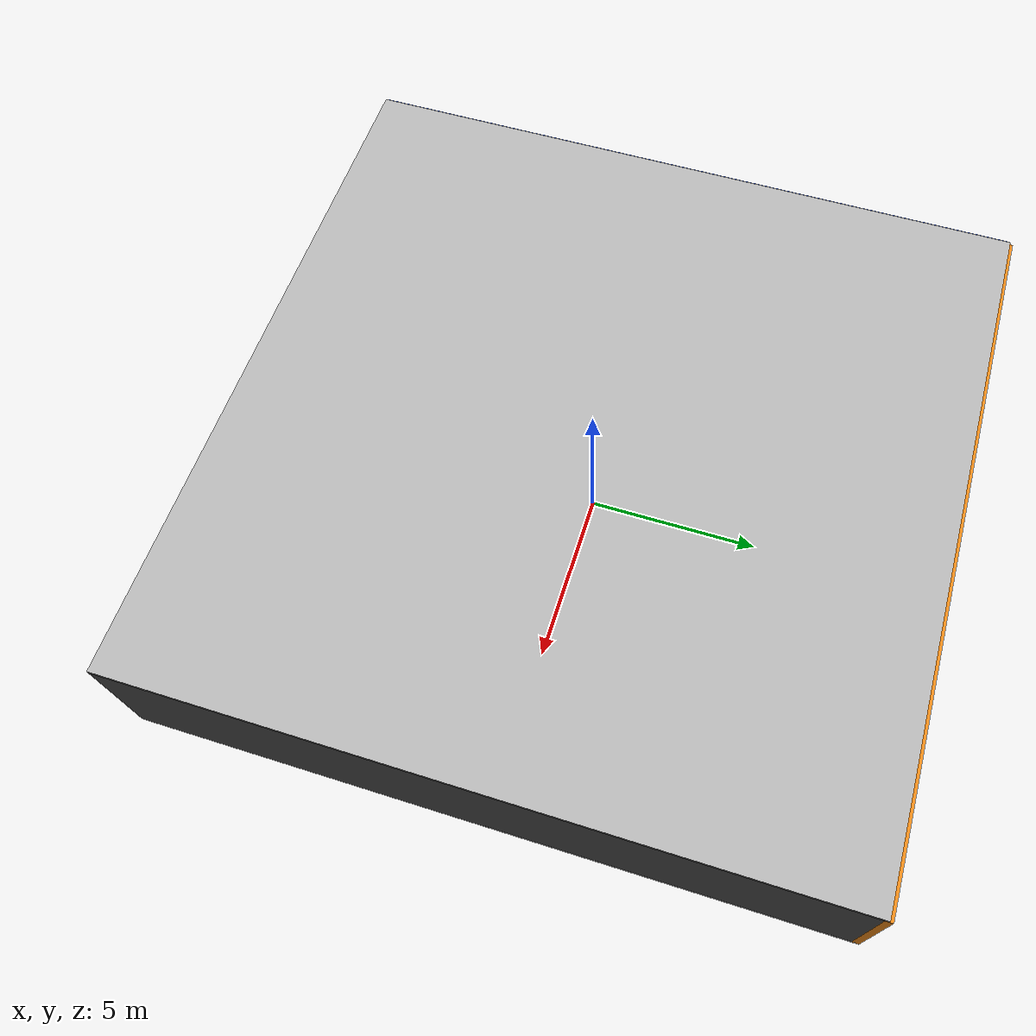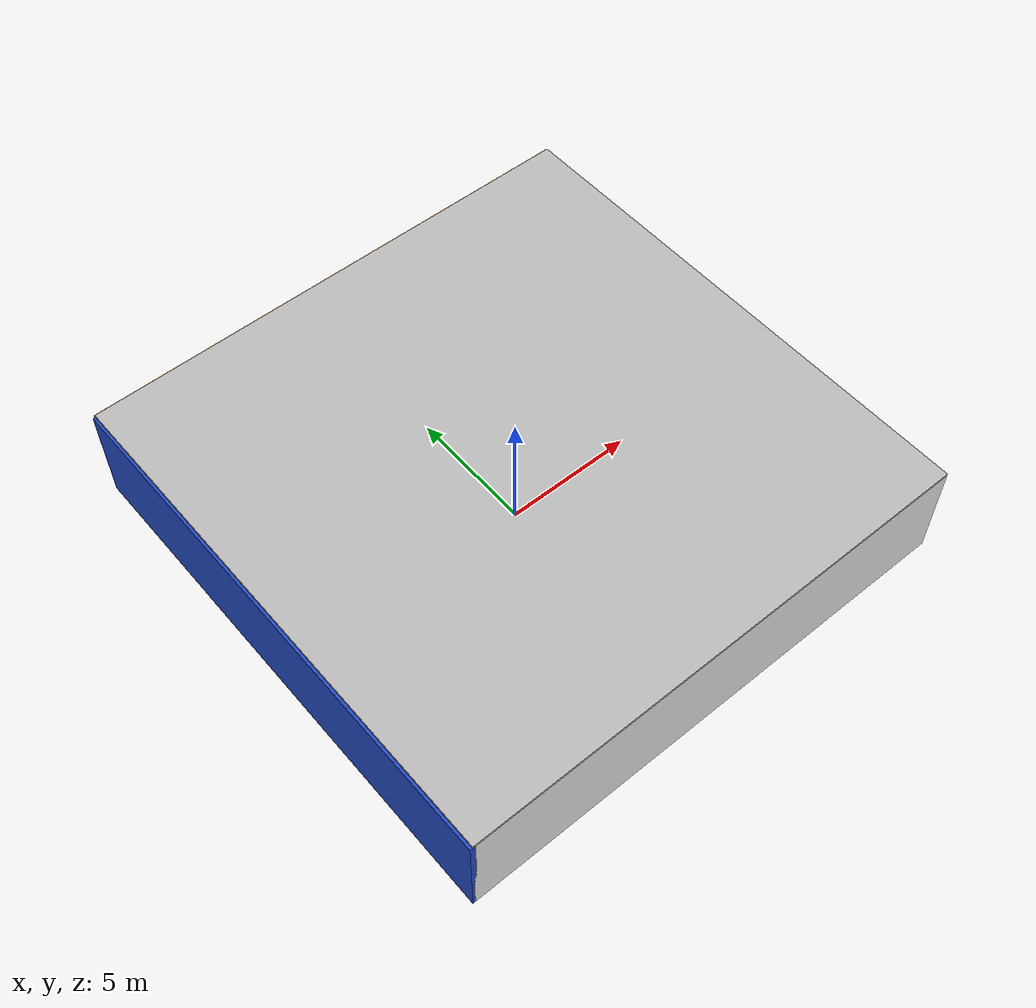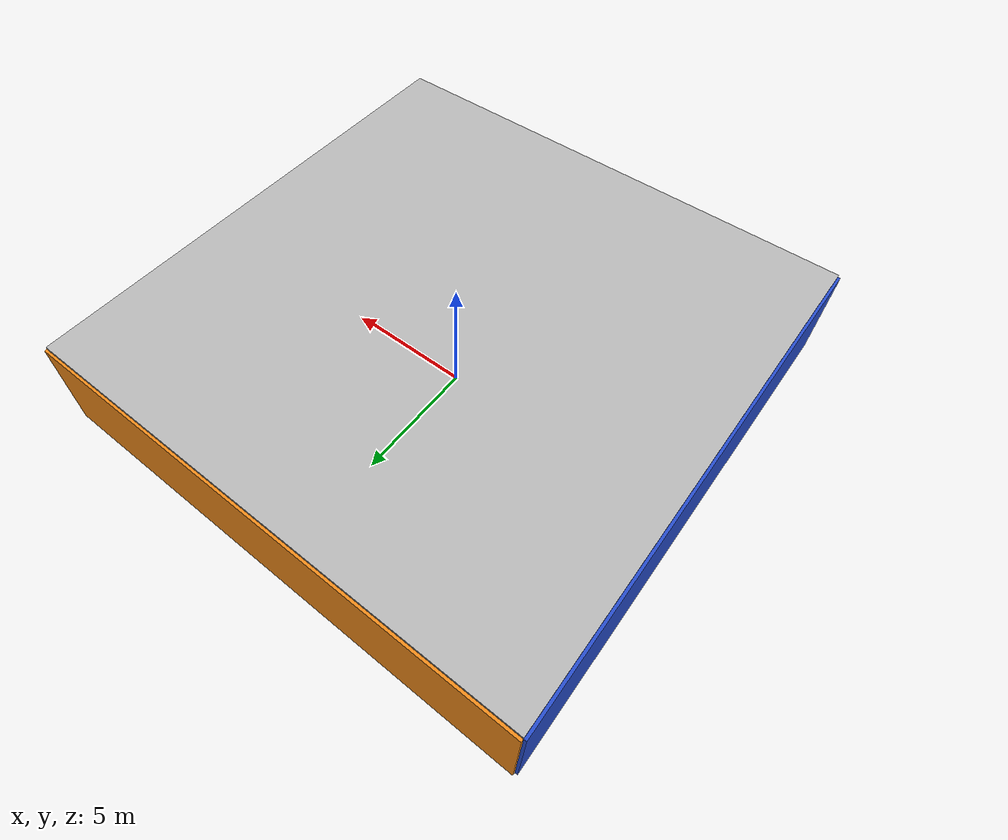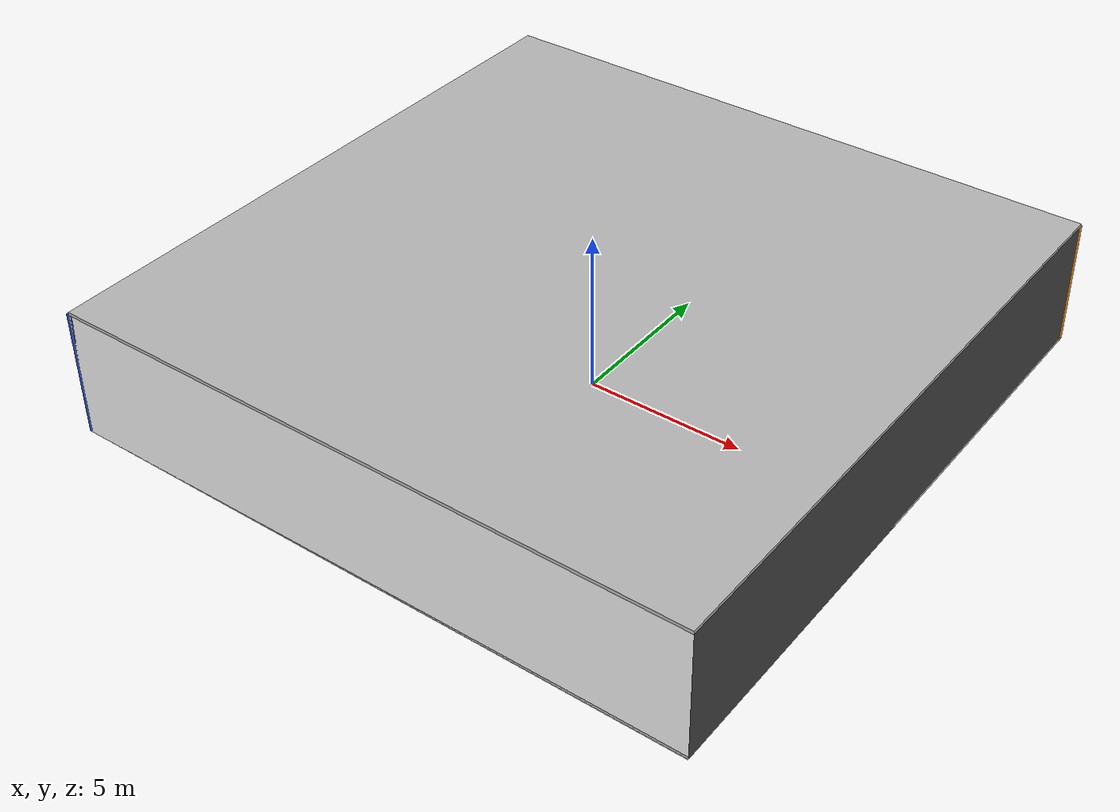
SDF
<sdf version="1.4">
 <world name="default">
  <physics type="ode">
   <max_step_size>0.001</max_step_size>
   <real_time_factor>1</real_time_factor>
   <real_time_update_rate>1000</real_time_update_rate>
   <gravity>0 0 -9.8</gravity>
  </physics>
  <scene><ambient>0.4 0.4 0.4 1</ambient><background>0.7 0.7 0.7 1</background><shadows>1</shadows></scene>
  <model name="Surrounding">
   <static>1</static>
   <link name="Ceiling">
    <collision name="Ceiling_Collision"><geometry><box><size>20 20 0.1</size></box></geometry></collision>
    <visual name="Ceiling_Visual">
     <geometry><box><size>20 20 0.1</size></box></geometry>
     <material>
      <script><uri>file://media/materials/scripts/gazebo.material</uri><name>Gazebo/LightOn</name></script>
     </material>
    </visual>
    <pose>0 0 4.05 0 0 0</pose>
   </link>
   <link name="Wall_South">
    <collision name="Wall_South_Collision">
     <geometry><box><size>20 0 4</size></box></geometry>
     <pose>0 0 2 0 -0 0</pose>
    </collision>
    <visual name="Wall_South_Visual">
     <pose>0 0 2 0 -0 0</pose>
     <geometry><box><size>20 0 4</size></box></geometry>
     <material>
      <script><uri>file://media/materials/scripts/gazebo.material</uri><name>Gazebo/WhiteGlow</name></script>
     </material>
    </visual>
    <velocity_decay><linear>0</linear><angular>0</angular></velocity_decay>
    <pose>0 -10 0 0 -0 0</pose>
   </link>
   <link name="Wall_East">
    <collision name="Wall_21_Collision">
     <geometry><box><size>20 0 4</size></box></geometry>
     <pose>0 0 2 0 -0 0</pose>
    </collision>
    <visual name="Wall_21_Visual">
     <pose>0 0 2 0 -0 0</pose>
     <geometry><box><size>20 0 4</size></box></geometry>
     <material>
      <script><uri>file://media/materials/scripts/gazebo.material</uri><name>Gazebo/Road</name></script>
     </material>
    </visual>
    <velocity_decay><linear>0</linear><angular>0</angular></velocity_decay>
    <pose>10 0 0 0 -0 1.5708</pose>
   </link>
   <link name="Wall_North">
    <collision name="Wall_22_Collision">
     <geometry><box><size>20 0.2 4</size></box></geometry>
     <pose>0 0 2 0 -0 0</pose>
    </collision>
    <visual name="Wall_22_Visual">
     <pose>0 0 2 0 -0 0</pose>
     <geometry><box><size>20 0.2 4</size></box></geometry>
     <material>
      <script><uri>file://media/materials/scripts/gazebo.material</uri><name>Gazebo/Orange</name></script>
     </material>
    </visual>
    <velocity_decay><linear>0</linear><angular>0</angular></velocity_decay>
    <pose>0 10 0 0 -0 0</pose>
   </link>
   <link name="Wall_West">
    <collision name="Wall_23_Collision">
     <geometry><box><size>20 0.2 4</size></box></geometry>
     <pose>0 0 2 0 -0 0</pose>
    </collision>
    <visual name="Wall_23_Visual">
     <pose>0 0 2 0 -0 0</pose>
     <geometry><box><size>20 0.2 4</size></box></geometry>
     <material>
      <script><uri>file://media/materials/scripts/gazebo.material</uri><name>Gazebo/BlueGlow</name></script>
     </material>
    </visual>
    <velocity_decay><linear>0</linear><angular>0</angular></velocity_decay>
    <pose>-10 0 0 0 0 -1.5708</pose>
   </link>
   <link name="Ground_link">
    <collision name="collision">
     <pose>0 0 .05 0 -0 0</pose>
     <geometry><box><size>20 20 0.1</size></box></geometry>
    </collision>
    <visual name="visual">
     <pose>0 0 .05 0 -0 0</pose>
     <geometry><box><size>20 20 0.1</size></box></geometry>
     <material>
      <script><uri>file://media/materials/scripts/gazebo.material</uri><name>Gazebo/LightOn</name></script>
     </material>
    </visual>
   </link>
   <static>1</static>
  </model>
  <spherical_coordinates>
   <surface_model>EARTH_WGS84</surface_model>
   <latitude_deg>0</latitude_deg>
   <longitude_deg>0</longitude_deg>
   <elevation>0</elevation>
   <heading_deg>0</heading_deg>
  </spherical_coordinates>
  <light name="lightball_0" type="diffuse">
   <diffuse>0.8 0.8 0.8 1</diffuse>
   <specular>0.2 0.2 0.2 1</specular>
   <attenuation>
    <range>100</range>
    <constant>0.7</constant>
    <linear>0.01</linear>
    <quadratic>0.001</quadratic>
   </attenuation>
   <direction>-0.5 0.1 -0.9</direction>
   <pose>-5.66331031944 4.60419855997 2.58885689446 0 0 0</pose>
  </light>
  <light name="lightball_1" type="diffuse">
   <diffuse>0.8 0.8 0.8 1</diffuse>
   <specular>0.2 0.2 0.2 1</specular>
   <attenuation>
    <range>100</range>
    <constant>0.7</constant>
    <linear>0.01</linear>
    <quadratic>0.001</quadratic>
   </attenuation>
   <direction>-0.5 0.1 -0.9</direction>
   <pose>2.94650705979 -7.30404110618 3.18827331607 0 0 0</pose>
  </light>
  <light name="lightball_2" type="diffuse">
   <diffuse>0.8 0.8 0.8 1</diffuse>
   <specular>0.2 0.2 0.2 1</specular>
   <attenuation>
    <range>100</range>
    <constant>0.7</constant>
    <linear>0.01</linear>
    <quadratic>0.001</quadratic>
   </attenuation>
   <direction>-0.5 0.1 -0.9</direction>
   <pose>2.26407801572 -5.60574262379 2.99307680558 0 0 0</pose>
  </light>
  <include><uri>model://table</uri><pose>-6.70370552799 1.58731516348 0 0 0 2.51150168934</pose></include>
  <include><uri>model://cabinet</uri><pose>-4.43232345216 -1.58065737893 0 0 0 1.22302192497</pose></include>
  <include>
   <uri>model://robocup_3Dsim_goal</uri>
   <pose>-2.28343029711 -7.68813311804 0 0 0 0.82399499859</pose>
  </include>
  <include>
   <uri>model://construction_cone</uri>
   <pose>1.80431827409 -3.77969062765 0 0 0 0.71615017548</pose>
  </include>
  <include>
   <uri>model://robocup_3Dsim_goal</uri>
   <pose>1.26904329004 4.5271988201 0 0 0 0.621929502873</pose>
  </include>
  <include><uri>model://cabinet</uri><pose>6.99989533313 -4.26803047042 0 0 0 1.60446243194</pose></include>
 </world>
</sdf>

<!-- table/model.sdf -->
<sdf version="1.5">
  <model name="table">
    <static>true</static>
    <link name="link">
      <collision name="surface">
        <pose>0 0 1.0 0 0 0</pose>
        <geometry>
          <box>
            <size>1.5 0.8 0.03</size>
          </box>
        </geometry>
        <surface>
          <friction>
            <ode>
              <mu>0.6</mu>
              <mu2>0.6</mu2>
            </ode>
          </friction>
        </surface>
      </collision>
      <visual name="visual1">
        <pose>0 0 1.0 0 0 0</pose>
        <geometry>
          <box>
            <size>1.5 0.8 0.03</size>
          </box>
        </geometry>
        <material>
          <script>
            <uri>model://media/materials/scripts/gazebo.material</uri>
            <name>Gazebo/Wood</name>
          </script>
        </material>
      </visual>
      <collision name="front_left_leg">
        <pose>0.68 0.38 0.5 0 0 0</pose>
        <geometry>
          <cylinder>
            <radius>0.02</radius>
            <length>1.0</length>
          </cylinder>
        </geometry>
      </collision>
      <visual name="front_left_leg">
        <pose>0.68 0.38 0.5 0 0 0</pose>
        <geometry>
          <cylinder>
            <radius>0.02</radius>
            <length>1.0</length>
          </cylinder>
        </geometry>
        <material>
          <script>
            <uri>model://media/materials/scripts/gazebo.material</uri>
            <name>Gazebo/Grey</name>
          </script>
        </material>
      </visual>
      <collision name="front_right_leg">
        <pose>0.68 -0.38 0.5 0 0 0</pose>
        <geometry>
          <cylinder>
            <radius>0.02</radius>
            <length>1.0</length>
          </cylinder>
        </geometry>
      </collision>
      <visual name="front_right_leg">
        <pose>0.68 -0.38 0.5 0 0 0</pose>
        <geometry>
          <cylinder>
            <radius>0.02</radius>
            <length>1.0</length>
          </cylinder>
        </geometry>
        <material>
          <script>
            <uri>model://media/materials/scripts/gazebo.material</uri>
            <name>Gazebo/Grey</name>
          </script>
        </material>
      </visual>
      <collision name="back_right_leg">
        <pose>-0.68 -0.38 0.5 0 0 0</pose>
        <geometry>
          <cylinder>
            <radius>0.02</radius>
            <length>1.0</length>
          </cylinder>
        </geometry>
      </collision>
      <visual name="back_right_leg">
        <pose>-0.68 -0.38 0.5 0 0 0</pose>
        <geometry>
          <cylinder>
            <radius>0.02</radius>
            <length>1.0</length>
          </cylinder>
        </geometry>
        <material>
          <script>
            <uri>model://media/materials/scripts/gazebo.material</uri>
            <name>Gazebo/Grey</name>
          </script>
        </material>
      </visual>
      <collision name="back_left_leg">
        <pose>-0.68 0.38 0.5 0 0 0</pose>
        <geometry>
          <cylinder>
            <radius>0.02</radius>
            <length>1.0</length>
          </cylinder>
        </geometry>
      </collision>
      <visual name="back_left_leg">
        <pose>-0.68 0.38 0.5 0 0 0</pose>
        <geometry>
          <cylinder>
            <radius>0.02</radius>
            <length>1.0</length>
          </cylinder>
        </geometry>
        <material>
          <script>
            <uri>model://media/materials/scripts/gazebo.material</uri>
            <name>Gazebo/Grey</name>
          </script>
        </material>
      </visual>
    </link>
  </model>
</sdf>

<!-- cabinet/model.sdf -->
<sdf version="1.5">
  <model name="cabinet">
    <static>true</static>
    <link name="cabinet_bottom_plate">
      <inertial>
        <pose>0 0 -1 0 0 0</pose>
        <inertia>
          <ixx>2.050000</ixx>
          <ixy>0</ixy>
          <ixz>0</ixz>
          <iyy>2.050000</iyy>
          <iyz>0</iyz>
          <izz>2.050000</izz>
        </inertia>
        <mass>25.000000</mass>
      </inertial>
      <collision name="cabinet_bottom_plate_geom">
        <pose>0 0 0.010000 0 0 0</pose>
        <geometry>
          <box>
            <size>0.450000 0.450000 0.020000</size>
          </box>
        </geometry>
      </collision>
      <visual name="cabinet_bottom_plate_geom_visual">
        <pose>0 0 0.010000 0 0 0</pose>
        <geometry>
          <box>
            <size>0.450000 0.450000 0.020000</size>
          </box>
        </geometry>
        <material>
          <script>
            <uri>model://media/materials/scripts/gazebo.material</uri>
            <name>Gazebo/Wood</name>
          </script>
        </material>
      </visual>
      <collision name="cabinet_bottom_plate_geom_cabinet_back_plate">
        <pose>0.235000 0 0.510000 0 0 0</pose>
        <geometry>
          <box>
            <size>0.020000 0.450000 1.020000</size>
          </box>
        </geometry>
      </collision>
      <visual name="cabinet_bottom_plate_geom_cabinet_back_plate_visual">
        <pose>0.235000 0 0.510000 0 0 0</pose>
        <geometry>
          <box>
            <size>0.020000 0.450000 1.020000</size>
          </box>
        </geometry>
        <material>
          <script>
            <uri>model://media/materials/scripts/gazebo.material</uri>
            <name>Gazebo/Wood</name>
          </script>
        </material>
      </visual>
      <collision name="cabinet_bottom_plate_geom_cabinet_left_plate">
        <pose>0 0.235000 0.510000 0 0 0</pose>
        <geometry>
          <box>
            <size>0.450000 0.020000 1.020000</size>
          </box>
        </geometry>
      </collision>
      <visual name="cabinet_bottom_plate_geom_cabinet_left_plate_visual">
        <pose>0 0.235000 0.510000 0 0 0</pose>
        <geometry>
          <box>
            <size>0.450000 0.020000 1.020000</size>
          </box>
        </geometry>
        <material>
          <script>
            <uri>model://media/materials/scripts/gazebo.material</uri>
            <name>Gazebo/Wood</name>
          </script>
        </material>
      </visual>
      <collision name="cabinet_bottom_plate_geom_cabinet_middle_plate">
        <pose>0 0 0.510000 0 0 0</pose>
        <geometry>
          <box>
            <size>0.450000 0.450000 0.020000</size>
          </box>
        </geometry>
      </collision>
      <visual name="cabinet_bottom_plate_geom_cabinet_middle_plate_visual">
        <pose>0 0 0.510000 0 0 0</pose>
        <geometry>
          <box>
            <size>0.450000 0.450000 0.020000</size>
          </box>
        </geometry>
        <material>
          <script>
            <uri>model://media/materials/scripts/gazebo.material</uri>
            <name>Gazebo/Wood</name>
          </script>
        </material>
      </visual>
      <collision name="cabinet_bottom_plate_geom_cabinet_right_plate">
        <pose>0 -0.235000 0.510000 0 0 0</pose>
        <geometry>
          <box>
            <size>0.450000 0.020000 1.020000</size>
          </box>
        </geometry>
      </collision>
      <visual name="cabinet_bottom_plate_geom_cabinet_right_plate_visual">
        <pose>0 -0.235000 0.510000 0 0 0</pose>
        <geometry>
          <box>
            <size>0.450000 0.020000 1.020000</size>
          </box>
        </geometry>
        <material>
          <script>
            <uri>model://media/materials/scripts/gazebo.material</uri>
            <name>Gazebo/Wood</name>
          </script>
        </material>
      </visual>
      <collision name="cabinet_bottom_plate_geom_cabinet_top_plate">
        <pose>0 0 1.010000 0 0 0</pose>
        <geometry>
          <box>
            <size>0.450000 0.450000 0.020000</size>
          </box>
        </geometry>
      </collision>
      <visual name="cabinet_bottom_plate_geom_cabinet_top_plate_visual">
        <pose>0 0 1.010000 0 0 0</pose>
        <geometry>
          <box>
            <size>0.450000 0.450000 0.020000</size>
          </box>
        </geometry>
        <material>
          <script>
            <uri>model://media/materials/scripts/gazebo.material</uri>
            <name>Gazebo/Wood</name>
          </script>
        </material>
      </visual>
    </link>
  </model>
</sdf>

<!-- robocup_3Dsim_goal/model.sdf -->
<sdf version="1.5">
  <model name="robocup_3d_goal">
    <static>true</static>
    <link name="left_post">
      <pose>0 1.05 0.45 0 0 0</pose>
      <collision name="collision">
        <geometry>
          <cylinder>
            <radius>0.05</radius>
            <length>0.9</length>
          </cylinder>
        </geometry>
      </collision>
      <visual name="visual">
        <geometry>
          <cylinder>
            <radius>0.05</radius>
            <length>0.9</length>
          </cylinder>
        </geometry>
        <material>
          <script>
            <uri>file://media/materials/scripts/gazebo.material</uri>
            <name>Gazebo/ZincYellow</name>
          </script>
        </material>
      </visual>
    </link>
    <link name="left_support_horiz_lower">
      <pose>0.30 1.05 0.01 0 0 0</pose>
      <collision name="collision">
        <geometry>
          <box>
            <size>0.50 0.02 0.02</size>
          </box>
        </geometry>
      </collision>
      <visual name="visual">
        <geometry>
          <box>
            <size>0.50 0.02 0.02</size>
          </box>
        </geometry>
        <material>
          <script>
            <uri>file://media/materials/scripts/gazebo.material</uri>
            <name>Gazebo/White</name>
          </script>
        </material>
      </visual>
    </link>
    <link name="left_support_horiz_upper">
      <pose>0.30 1.05 0.79 0 0 0</pose>
      <collision name="collision">
        <geometry>
          <box>
            <size>0.50 0.02 0.02</size>
          </box>
        </geometry>
      </collision>
      <visual name="visual">
        <geometry>
          <box>
            <size>0.50 0.02 0.02</size>
          </box>
        </geometry>
        <material>
          <script>
            <uri>file://media/materials/scripts/gazebo.material</uri>
            <name>Gazebo/White</name>
          </script>
        </material>
      </visual>
    </link>
    <link name="left_support_vertical">
      <pose>0.56 1.05 0.4 0 1.5708 0</pose>
      <collision name="collision">
        <geometry>
          <box>
            <size>0.80 0.02 0.02</size>
          </box>
        </geometry>
      </collision>
      <visual name="visual">
        <geometry>
          <box>
            <size>0.80 0.02 0.02</size>
          </box>
        </geometry>
        <material>
          <script>
            <uri>file://media/materials/scripts/gazebo.material</uri>
            <name>Gazebo/White</name>
          </script>
        </material>
      </visual>
    </link>
    <link name="right_support_horiz_lower">
      <pose>0.30 -1.05 0.01 0 0 0</pose>
      <collision name="collision">
        <geometry>
          <box>
            <size>0.50 0.02 0.02</size>
          </box>
        </geometry>
      </collision>
      <visual name="visual">
        <geometry>
          <box>
            <size>0.50 0.02 0.02</size>
          </box>
        </geometry>
        <material>
          <script>
            <uri>file://media/materials/scripts/gazebo.material</uri>
            <name>Gazebo/White</name>
          </script>
        </material>
      </visual>
    </link>
    <link name="right_support_horiz_upper">
      <pose>0.30 -1.05 0.79 0 0 0</pose>
      <collision name="collision">
        <geometry>
          <box>
            <size>0.50 0.02 0.02</size>
          </box>
        </geometry>
      </collision>
      <visual name="visual">
        <geometry>
          <box>
            <size>0.50 0.02 0.02</size>
          </box>
        </geometry>
        <material>
          <script>
            <uri>file://media/materials/scripts/gazebo.material</uri>
            <name>Gazebo/White</name>
          </script>
        </material>
      </visual>
    </link>
    <link name="right_support_vertical">
      <pose>0.56 -1.05 0.4 0 1.5708 0</pose>
      <collision name="collision">
        <geometry>
          <box>
            <size>0.80 0.02 0.02</size>
          </box>
        </geometry>
      </collision>
      <visual name="visual">
        <geometry>
          <box>
            <size>0.80 0.02 0.02</size>
          </box>
        </geometry>
        <material>
          <script>
            <uri>file://media/materials/scripts/gazebo.material</uri>
            <name>Gazebo/White</name>
          </script>
        </material>
      </visual>
    </link>
    <link name="center_support_horiz_lower">
      <pose>0.56 0 0.01 0 1.5708 0</pose>
      <collision name="collision">
        <geometry>
          <box>
            <size>0.02 2.08 0.02</size>
          </box>
        </geometry>
      </collision>
      <visual name="visual">
        <geometry>
          <box>
            <size>0.02 2.08 0.02</size>
          </box>
        </geometry>
        <material>
          <script>
            <uri>file://media/materials/scripts/gazebo.material</uri>
            <name>Gazebo/White</name>
          </script>
        </material>
      </visual>
    </link>
    <link name="center_support_horiz_upper">
      <pose>0.56 0 0.79 0 1.5708 0</pose>
      <collision name="collision">
        <geometry>
          <box>
            <size>0.02 2.08 0.02</size>
          </box>
        </geometry>
      </collision>
      <visual name="visual">
        <geometry>
          <box>
            <size>0.02 2.08 0.02</size>
          </box>
        </geometry>
        <material>
          <script>
            <uri>file://media/materials/scripts/gazebo.material</uri>
            <name>Gazebo/White</name>
          </script>
        </material>
      </visual>
    </link>
    <link name="right_post">
      <pose>0 -1.05 0.45 0 0 0</pose>
      <collision name="collision">
        <geometry>
          <cylinder>
            <radius>0.05</radius>
            <length>0.9</length>
          </cylinder>
        </geometry>
      </collision>
      <visual name="visual">
        <geometry>
          <cylinder>
            <radius>0.05</radius>
            <length>0.9</length>
          </cylinder>
        </geometry>
        <material>
          <script>
            <uri>file://media/materials/scripts/gazebo.material</uri>
            <name>Gazebo/ZincYellow</name>
          </script>
        </material>
      </visual>
    </link>
    <link name="crossbar">
      <pose>0 0 0.85 1.57 1.57 0</pose>
      <collision name="collision">
        <geometry>
          <cylinder>
            <radius>0.05</radius>
            <length>2.0</length>
          </cylinder>
        </geometry>
      </collision>
      <visual name="visual">
        <geometry>
          <cylinder>
            <radius>0.05</radius>
            <length>2.0</length>
          </cylinder>
        </geometry>
        <material>
          <script>
            <uri>file://media/materials/scripts/gazebo.material</uri>
            <name>Gazebo/ZincYellow</name>
          </script>
        </material>
      </visual>
    </link>
    <link name="center_net">
      <pose>0.56 0 0.40 0 0 0</pose>
      <collision name="collision">
        <geometry>
          <box>
            <size>0.01 2.1 0.80</size>
          </box>
        </geometry>
      </collision>
      <visual name="visual">
        <geometry>
          <box>
            <size>0.01 2.1 0.80</size>
          </box>
        </geometry>
        <material>
          <script>
            <uri>model://../model_source/models/robocup09_spl_field/materials/scripts/</uri>
            <uri>model://../model_source/models/robocup09_spl_field/materials/textures/</uri>
            <name>RoboCup/Net</name>
          </script>
        </material>
      </visual>
    </link>
    <link name="left_net">
      <pose>0.30 1.05 0.40 0 0 0</pose>
      <collision name="collision">
        <geometry>
          <box>
            <size>0.50 0.01 0.76</size>
          </box>
        </geometry>
      </collision>
      <visual name="visual">
        <geometry>
          <box>
            <size>0.50 0.01 0.76</size>
          </box>
        </geometry>
        <material>
          <script>
            <uri>model://../model_source/models/robocup09_spl_field/materials/scripts/</uri>
            <uri>model://../model_source/models/robocup09_spl_field/materials/textures/</uri>
            <name>RoboCup/Net</name>
          </script>
        </material>
      </visual>
    </link>
    <link name="right_net">
      <pose>0.30 -1.05 0.40 0 0 0</pose>
      <collision name="collision">
        <geometry>
          <box>
            <size>0.50 0.01 0.76</size>
          </box>
        </geometry>
      </collision>
      <visual name="visual">
        <geometry>
          <box>
            <size>0.50 0.01 0.76</size>
          </box>
        </geometry>
        <material>
          <script>
            <uri>model://../model_source/models/robocup09_spl_field/materials/scripts/</uri>
            <uri>model://../model_source/models/robocup09_spl_field/materials/textures/</uri>
            <name>RoboCup/Net</name>
          </script>
        </material>
      </visual>
    </link>
  </model>
</sdf>

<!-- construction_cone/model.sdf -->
<sdf version="1.5">
  <model name="Construction Cone">
    <link name="link">
      <collision name="collision">
        <geometry>
          <mesh>
            <scale>10 10 10</scale>
            <uri>file://isr-testbed/construction_cone/meshes/construction_cone.dae</uri>
          </mesh>
        </geometry>
      </collision>
      <visual name="visual">
        <geometry>
          <mesh>
            <scale>10 10 10</scale>
            <uri>file://isr-testbed/construction_cone/meshes/construction_cone.dae</uri>
          </mesh>
        </geometry>
      </visual>
    </link>
  </model>
</sdf>
